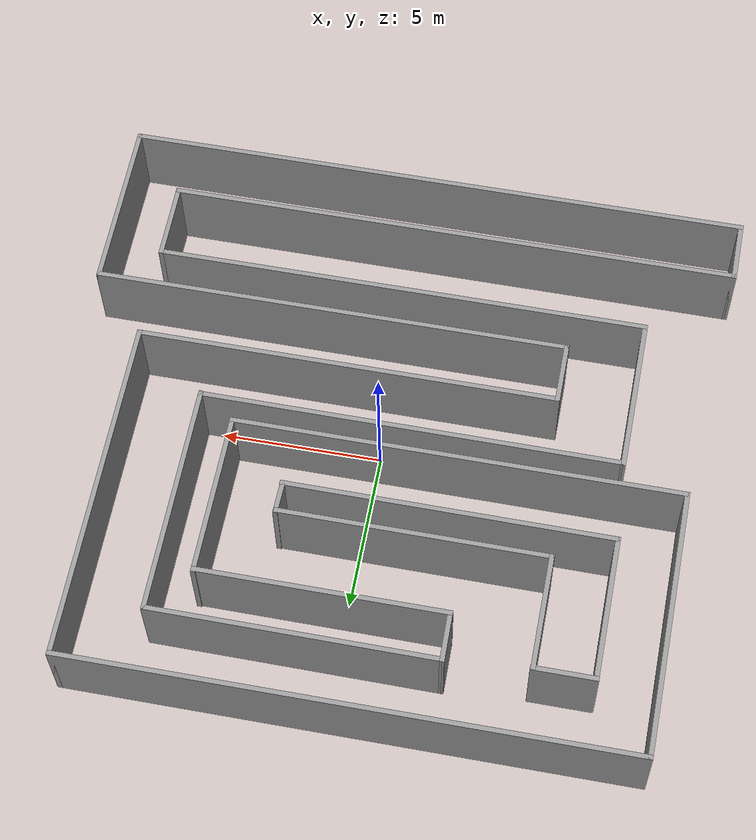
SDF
<?xml version='1.0'?>
<sdf version='1.6'>
  <model name='map1'>
    <pose frame=''>-0.149304 0.010057 0 0 -0 0</pose>
    <link name='Wall_0'>
      <collision name='Wall_0_Collision'>
        <geometry>
          <box>
            <size>19.75 0.15 2.5</size>
          </box>
        </geometry>
        <pose frame=''>0 0 1.25 0 -0 0</pose>
      </collision>
      <visual name='Wall_0_Visual'>
        <pose frame=''>0 0 1.25 0 -0 0</pose>
        <geometry>
          <box>
            <size>19.75 0.15 2.5</size>
          </box>
        </geometry>
        <material>
          <script>
            <uri>file://media/materials/scripts/gazebo.material</uri>
            <name>Gazebo/Grey</name>
          </script>
          <ambient>1 1 1 1</ambient>
        </material>
      </visual>
      <pose frame=''>0 -9.03 0 0 -0 3.14159</pose>
    </link>
    <link name='Wall_1'>
      <collision name='Wall_1_Collision'>
        <geometry>
          <box>
            <size>2 0.15 2.5</size>
          </box>
        </geometry>
        <pose frame=''>0 0 1.25 0 -0 0</pose>
      </collision>
      <visual name='Wall_1_Visual'>
        <pose frame=''>0 0 1.25 0 -0 0</pose>
        <geometry>
          <box>
            <size>2 0.15 2.5</size>
          </box>
        </geometry>
        <material>
          <script>
            <uri>file://media/materials/scripts/gazebo.material</uri>
            <name>Gazebo/Grey</name>
          </script>
          <ambient>1 1 1 1</ambient>
        </material>
      </visual>
      <pose frame=''>-9.8 -8.105 0 0 -0 1.5708</pose>
    </link>
    <link name='Wall_10'>
      <collision name='Wall_10_Collision'>
        <geometry>
          <box>
            <size>7.77153 0.15 2.5</size>
          </box>
        </geometry>
        <pose frame=''>0 0 1.25 0 -0 0</pose>
      </collision>
      <visual name='Wall_10_Visual'>
        <pose frame=''>0 0 1.25 0 -0 0</pose>
        <geometry>
          <box>
            <size>7.77153 0.15 2.5</size>
          </box>
        </geometry>
        <material>
          <script>
            <uri>file://media/materials/scripts/gazebo.material</uri>
            <name>Gazebo/Grey</name>
          </script>
          <ambient>1 1 1 1</ambient>
        </material>
      </visual>
      <pose frame=''>0.773632 5.71663 0 0 0 -0.001962</pose>
    </link>
    <link name='Wall_11'>
      <collision name='Wall_11_Collision'>
        <geometry>
          <box>
            <size>5.22366 0.15 2.5</size>
          </box>
        </geometry>
        <pose frame=''>0 0 1.25 0 -0 0</pose>
      </collision>
      <visual name='Wall_11_Visual'>
        <pose frame=''>0 0 1.25 0 -0 0</pose>
        <geometry>
          <box>
            <size>5.22366 0.15 2.5</size>
          </box>
        </geometry>
        <material>
          <script>
            <uri>file://media/materials/scripts/gazebo.material</uri>
            <name>Gazebo/Grey</name>
          </script>
          <ambient>1 1 1 1</ambient>
        </material>
      </visual>
      <pose frame=''>4.5672 3.20677 0 0 0 -1.57757</pose>
    </link>
    <link name='Wall_12'>
      <collision name='Wall_12_Collision'>
        <geometry>
          <box>
            <size>14 0.15 2.5</size>
          </box>
        </geometry>
        <pose frame=''>0 0 1.25 0 -0 0</pose>
      </collision>
      <visual name='Wall_12_Visual'>
        <pose frame=''>0 0 1.25 0 -0 0</pose>
        <geometry>
          <box>
            <size>14 0.15 2.5</size>
          </box>
        </geometry>
        <material>
          <script>
            <uri>file://media/materials/scripts/gazebo.material</uri>
            <name>Gazebo/Grey</name>
          </script>
          <ambient>1 1 1 1</ambient>
        </material>
      </visual>
      <pose frame=''>-2.375 0.675 0 0 -0 3.14087</pose>
    </link>
    <link name='Wall_14'>
      <collision name='Wall_14_Collision'>
        <geometry>
          <box>
            <size>8.5 0.15 2.5</size>
          </box>
        </geometry>
        <pose frame=''>0 0 1.25 0 -0 0</pose>
      </collision>
      <visual name='Wall_14_Visual'>
        <pose frame=''>0 0 1.25 0 -0 0</pose>
        <geometry>
          <box>
            <size>8.5 0.15 2.5</size>
          </box>
        </geometry>
        <material>
          <script>
            <uri>file://media/materials/scripts/gazebo.material</uri>
            <name>Gazebo/Grey</name>
          </script>
          <ambient>1 1 1 1</ambient>
        </material>
      </visual>
      <pose frame=''>-9.3 4.855 0 0 -0 1.5708</pose>
    </link>
    <link name='Wall_15'>
      <collision name='Wall_15_Collision'>
        <geometry>
          <box>
            <size>17.5 0.15 2.5</size>
          </box>
        </geometry>
        <pose frame=''>0 0 1.25 0 -0 0</pose>
      </collision>
      <visual name='Wall_15_Visual'>
        <pose frame=''>0 0 1.25 0 -0 0</pose>
        <geometry>
          <box>
            <size>17.5 0.15 2.5</size>
          </box>
        </geometry>
        <material>
          <script>
            <uri>file://media/materials/scripts/gazebo.material</uri>
            <name>Gazebo/Grey</name>
          </script>
          <ambient>1 1 1 1</ambient>
        </material>
      </visual>
      <pose frame=''>-0.625 9.03 0 0 -0 0</pose>
    </link>
    <link name='Wall_16'>
      <collision name='Wall_16_Collision'>
        <geometry>
          <box>
            <size>11 0.15 2.5</size>
          </box>
        </geometry>
        <pose frame=''>0 0 1.25 0 -0 0</pose>
      </collision>
      <visual name='Wall_16_Visual'>
        <pose frame=''>0 0 1.25 0 -0 0</pose>
        <geometry>
          <box>
            <size>11 0.15 2.5</size>
          </box>
        </geometry>
        <material>
          <script>
            <uri>file://media/materials/scripts/gazebo.material</uri>
            <name>Gazebo/Grey</name>
          </script>
          <ambient>1 1 1 1</ambient>
        </material>
      </visual>
      <pose frame=''>8.05 3.605 0 0 0 -1.5708</pose>
    </link>
    <link name='Wall_17'>
      <collision name='Wall_17_Collision'>
        <geometry>
          <box>
            <size>13.2073 0.15 2.5</size>
          </box>
        </geometry>
        <pose frame=''>0 0 1.25 0 -0 0</pose>
      </collision>
      <visual name='Wall_17_Visual'>
        <pose frame=''>0 0 1.25 0 -0 0</pose>
        <geometry>
          <box>
            <size>13.2073 0.15 2.5</size>
          </box>
        </geometry>
        <material>
          <script>
            <uri>file://media/materials/scripts/gazebo.material</uri>
            <name>Gazebo/Grey</name>
          </script>
          <ambient>1 1 1 1</ambient>
        </material>
      </visual>
      <pose frame=''>1.52135 -1.82 0 0 -0 3.14159</pose>
    </link>
    <link name='Wall_18'>
      <collision name='Wall_18_Collision'>
        <geometry>
          <box>
            <size>2 0.15 2.5</size>
          </box>
        </geometry>
        <pose frame=''>0 0 1.25 0 -0 0</pose>
      </collision>
      <visual name='Wall_18_Visual'>
        <pose frame=''>0 0 1.25 0 -0 0</pose>
        <geometry>
          <box>
            <size>2 0.15 2.5</size>
          </box>
        </geometry>
        <material>
          <script>
            <uri>file://media/materials/scripts/gazebo.material</uri>
            <name>Gazebo/Grey</name>
          </script>
          <ambient>1 1 1 1</ambient>
        </material>
      </visual>
      <pose frame=''>-5.0186 -2.745 0 0 0 -1.5708</pose>
    </link>
    <link name='Wall_19'>
      <collision name='Wall_19_Collision'>
        <geometry>
          <box>
            <size>14.9573 0.15 2.5</size>
          </box>
        </geometry>
        <pose frame=''>0 0 1.25 0 -0 0</pose>
      </collision>
      <visual name='Wall_19_Visual'>
        <pose frame=''>0 0 1.25 0 -0 0</pose>
        <geometry>
          <box>
            <size>14.9573 0.15 2.5</size>
          </box>
        </geometry>
        <material>
          <script>
            <uri>file://media/materials/scripts/gazebo.material</uri>
            <name>Gazebo/Grey</name>
          </script>
          <ambient>1 1 1 1</ambient>
        </material>
      </visual>
      <pose frame=''>2.39635 -3.67 0 0 -0 0</pose>
    </link>
    <link name='Wall_2'>
      <collision name='Wall_2_Collision'>
        <geometry>
          <box>
            <size>18.0138 0.15 2.5</size>
          </box>
        </geometry>
        <pose frame=''>0 0 1.25 0 -0 0</pose>
      </collision>
      <visual name='Wall_2_Visual'>
        <pose frame=''>0 0 1.25 0 -0 0</pose>
        <geometry>
          <box>
            <size>18.0138 0.15 2.5</size>
          </box>
        </geometry>
        <material>
          <script>
            <uri>file://media/materials/scripts/gazebo.material</uri>
            <name>Gazebo/Grey</name>
          </script>
          <ambient>1 1 1 1</ambient>
        </material>
      </visual>
      <pose frame=''>-0.868085 -7.18 0 0 -0 0</pose>
    </link>
    <link name='Wall_20'>
      <collision name='Wall_20_Collision'>
        <geometry>
          <box>
            <size>5.5 0.15 2.5</size>
          </box>
        </geometry>
        <pose frame=''>0 0 1.25 0 -0 0</pose>
      </collision>
      <visual name='Wall_20_Visual'>
        <pose frame=''>0 0 1.25 0 -0 0</pose>
        <geometry>
          <box>
            <size>5.5 0.15 2.5</size>
          </box>
        </geometry>
        <material>
          <script>
            <uri>file://media/materials/scripts/gazebo.material</uri>
            <name>Gazebo/Grey</name>
          </script>
          <ambient>1 1 1 1</ambient>
        </material>
      </visual>
      <pose frame=''>9.8 -6.345 0 0 0 -1.5708</pose>
    </link>
    <link name='Wall_22'>
      <collision name='Wall_22_Collision'>
        <geometry>
          <box>
            <size>2 0.15 2.5</size>
          </box>
        </geometry>
        <pose frame=''>0 0 1.25 0 -0 0</pose>
      </collision>
      <visual name='Wall_22_Visual'>
        <pose frame=''>0 0 1.25 0 -0 0</pose>
        <geometry>
          <box>
            <size>2 0.15 2.5</size>
          </box>
        </geometry>
        <material>
          <script>
            <uri>file://media/materials/scripts/gazebo.material</uri>
            <name>Gazebo/Grey</name>
          </script>
          <ambient>1 1 1 1</ambient>
        </material>
      </visual>
      <pose frame=''>-6.56304 6.972 0 0 -0 0</pose>
    </link>
    <link name='Wall_23'>
      <collision name='Wall_23_Collision'>
        <geometry>
          <box>
            <size>3.68822 0.15 2.5</size>
          </box>
        </geometry>
        <pose frame=''>0 0 1.25 0 -0 0</pose>
      </collision>
      <visual name='Wall_23_Visual'>
        <pose frame=''>0 0 1.25 0 -0 0</pose>
        <geometry>
          <box>
            <size>3.68822 0.15 2.5</size>
          </box>
        </geometry>
        <material>
          <script>
            <uri>file://media/materials/scripts/gazebo.material</uri>
            <name>Gazebo/Grey</name>
          </script>
          <ambient>1 1 1 1</ambient>
        </material>
      </visual>
      <pose frame=''>-5.64928 5.19305 0 0 0 -1.5716</pose>
    </link>
    <link name='Wall_24'>
      <collision name='Wall_24_Collision'>
        <geometry>
          <box>
            <size>8.40439 0.15 2.5</size>
          </box>
        </geometry>
        <pose frame=''>0 0 1.25 0 -0 0</pose>
      </collision>
      <visual name='Wall_24_Visual'>
        <pose frame=''>0 0 1.25 0 -0 0</pose>
        <geometry>
          <box>
            <size>8.40439 0.15 2.5</size>
          </box>
        </geometry>
        <material>
          <script>
            <uri>file://media/materials/scripts/gazebo.material</uri>
            <name>Gazebo/Grey</name>
          </script>
          <ambient>1 1 1 1</ambient>
        </material>
      </visual>
      <pose frame=''>-1.52352 3.41259 0 0 0 -0.00275</pose>
    </link>
    <link name='Wall_25'>
      <collision name='Wall_25_Collision'>
        <geometry>
          <box>
            <size>1.09191 0.15 2.5</size>
          </box>
        </geometry>
        <pose frame=''>0 0 1.25 0 -0 0</pose>
      </collision>
      <visual name='Wall_25_Visual'>
        <pose frame=''>0 0 1.25 0 -0 0</pose>
        <geometry>
          <box>
            <size>1.09191 0.15 2.5</size>
          </box>
        </geometry>
        <material>
          <script>
            <uri>file://media/materials/scripts/gazebo.material</uri>
            <name>Gazebo/Grey</name>
          </script>
          <ambient>1 1 1 1</ambient>
        </material>
      </visual>
      <pose frame=''>2.61503 2.95358 0 0 0 -1.59496</pose>
    </link>
    <link name='Wall_26'>
      <collision name='Wall_26_Collision'>
        <geometry>
          <box>
            <size>10.2441 0.15 2.5</size>
          </box>
        </geometry>
        <pose frame=''>0 0 1.25 0 -0 0</pose>
      </collision>
      <visual name='Wall_26_Visual'>
        <pose frame=''>0 0 1.25 0 -0 0</pose>
        <geometry>
          <box>
            <size>10.2441 0.15 2.5</size>
          </box>
        </geometry>
        <material>
          <script>
            <uri>file://media/materials/scripts/gazebo.material</uri>
            <name>Gazebo/Grey</name>
          </script>
          <ambient>1 1 1 1</ambient>
        </material>
      </visual>
      <pose frame=''>-2.42063 2.49946 0 0 -0 3.13837</pose>
    </link>
    <link name='Wall_27'>
      <collision name='Wall_27_Collision'>
        <geometry>
          <box>
            <size>4.5 0.15 2.5</size>
          </box>
        </geometry>
        <pose frame=''>0 0 1.25 0 -0 0</pose>
      </collision>
      <visual name='Wall_27_Visual'>
        <pose frame=''>0 0 1.25 0 -0 0</pose>
        <geometry>
          <box>
            <size>4.5 0.15 2.5</size>
          </box>
        </geometry>
        <material>
          <script>
            <uri>file://media/materials/scripts/gazebo.material</uri>
            <name>Gazebo/Grey</name>
          </script>
          <ambient>1 1 1 1</ambient>
        </material>
      </visual>
      <pose frame=''>-7.47751 4.69074 0 0 -0 1.5708</pose>
    </link>
    <link name='Wall_3'>
      <collision name='Wall_3_Collision'>
        <geometry>
          <box>
            <size>2.5 0.15 2.5</size>
          </box>
        </geometry>
        <pose frame=''>0 0 1.25 0 -0 0</pose>
      </collision>
      <visual name='Wall_3_Visual'>
        <pose frame=''>0 0 1.25 0 -0 0</pose>
        <geometry>
          <box>
            <size>2.5 0.15 2.5</size>
          </box>
        </geometry>
        <material>
          <script>
            <uri>file://media/materials/scripts/gazebo.material</uri>
            <name>Gazebo/Grey</name>
          </script>
          <ambient>1 1 1 1</ambient>
        </material>
      </visual>
      <pose frame=''>8.07514 -6.005 0 0 -0 1.5708</pose>
    </link>
    <link name='Wall_4'>
      <collision name='Wall_4_Collision'>
        <geometry>
          <box>
            <size>15.5138 0.15 2.5</size>
          </box>
        </geometry>
        <pose frame=''>0 0 1.25 0 -0 0</pose>
      </collision>
      <visual name='Wall_4_Visual'>
        <pose frame=''>0 0 1.25 0 -0 0</pose>
        <geometry>
          <box>
            <size>15.5138 0.15 2.5</size>
          </box>
        </geometry>
        <material>
          <script>
            <uri>file://media/materials/scripts/gazebo.material</uri>
            <name>Gazebo/Grey</name>
          </script>
          <ambient>1 1 1 1</ambient>
        </material>
      </visual>
      <pose frame=''>0.381915 -4.83 0 0 -0 3.14159</pose>
    </link>
    <link name='Wall_5'>
      <collision name='Wall_5_Collision'>
        <geometry>
          <box>
            <size>4.96995 0.15 2.5</size>
          </box>
        </geometry>
        <pose frame=''>0 0 1.25 0 -0 0</pose>
      </collision>
      <visual name='Wall_5_Visual'>
        <pose frame=''>0 0 1.25 0 -0 0</pose>
        <geometry>
          <box>
            <size>4.96995 0.15 2.5</size>
          </box>
        </geometry>
        <material>
          <script>
            <uri>file://media/materials/scripts/gazebo.material</uri>
            <name>Gazebo/Grey</name>
          </script>
          <ambient>1 1 1 1</ambient>
        </material>
      </visual>
      <pose frame=''>-7.29485 -2.42003 0 0 -0 1.56866</pose>
    </link>
    <link name='Wall_6'>
      <collision name='Wall_6_Collision'>
        <geometry>
          <box>
            <size>13.1382 0.15 2.5</size>
          </box>
        </geometry>
        <pose frame=''>0 0 1.25 0 -0 0</pose>
      </collision>
      <visual name='Wall_6_Visual'>
        <pose frame=''>0 0 1.25 0 -0 0</pose>
        <geometry>
          <box>
            <size>13.1382 0.15 2.5</size>
          </box>
        </geometry>
        <material>
          <script>
            <uri>file://media/materials/scripts/gazebo.material</uri>
            <name>Gazebo/Grey</name>
          </script>
          <ambient>1 1 1 1</ambient>
        </material>
      </visual>
      <pose frame=''>-0.795617 -0.027253 0 0 0 -0.002648</pose>
    </link>
    <link name='Wall_7'>
      <collision name='Wall_7_Collision'>
        <geometry>
          <box>
            <size>7.35293 0.15 2.5</size>
          </box>
        </geometry>
        <pose frame=''>0 0 1.25 0 -0 0</pose>
      </collision>
      <visual name='Wall_7_Visual'>
        <pose frame=''>0 0 1.25 0 -0 0</pose>
        <geometry>
          <box>
            <size>7.35293 0.15 2.5</size>
          </box>
        </geometry>
        <material>
          <script>
            <uri>file://media/materials/scripts/gazebo.material</uri>
            <name>Gazebo/Grey</name>
          </script>
          <ambient>1 1 1 1</ambient>
        </material>
      </visual>
      <pose frame=''>5.71326 3.53979 0 0 -0 1.56669</pose>
    </link>
    <link name='Wall_8'>
      <collision name='Wall_8_Collision'>
        <geometry>
          <box>
            <size>8.91974 0.15 2.5</size>
          </box>
        </geometry>
        <pose frame=''>0 0 1.25 0 -0 0</pose>
      </collision>
      <visual name='Wall_8_Visual'>
        <pose frame=''>0 0 1.25 0 -0 0</pose>
        <geometry>
          <box>
            <size>8.91974 0.15 2.5</size>
          </box>
        </geometry>
        <material>
          <script>
            <uri>file://media/materials/scripts/gazebo.material</uri>
            <name>Gazebo/Grey</name>
          </script>
          <ambient>1 1 1 1</ambient>
        </material>
      </visual>
      <pose frame=''>1.34323 7.17337 0 0 -0 3.13767</pose>
    </link>
    <link name='Wall_9'>
      <collision name='Wall_9_Collision'>
        <geometry>
          <box>
            <size>1.58221 0.15 2.5</size>
          </box>
        </geometry>
        <pose frame=''>0 0 1.25 0 -0 0</pose>
      </collision>
      <visual name='Wall_9_Visual'>
        <pose frame=''>0 0 1.25 0 -0 0</pose>
        <geometry>
          <box>
            <size>1.58221 0.15 2.5</size>
          </box>
        </geometry>
        <material>
          <script>
            <uri>file://media/materials/scripts/gazebo.material</uri>
            <name>Gazebo/Grey</name>
          </script>
          <ambient>1 1 1 1</ambient>
        </material>
      </visual>
      <pose frame=''>-3.04685 6.47453 0 0 0 -1.55722</pose>
    </link>
    <static>1</static>
  </model>
</sdf>
